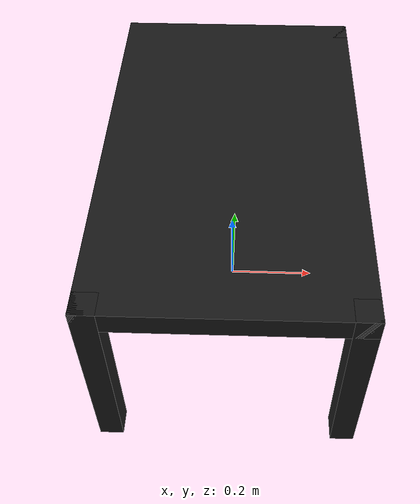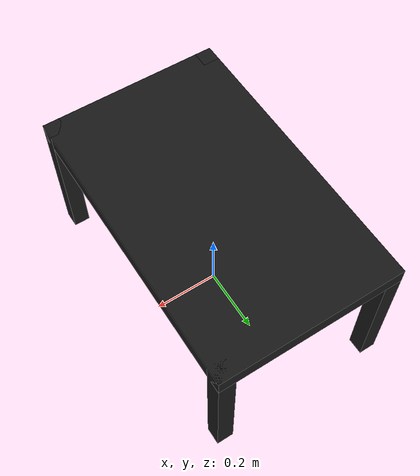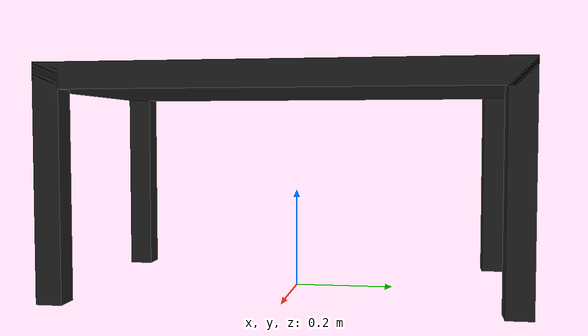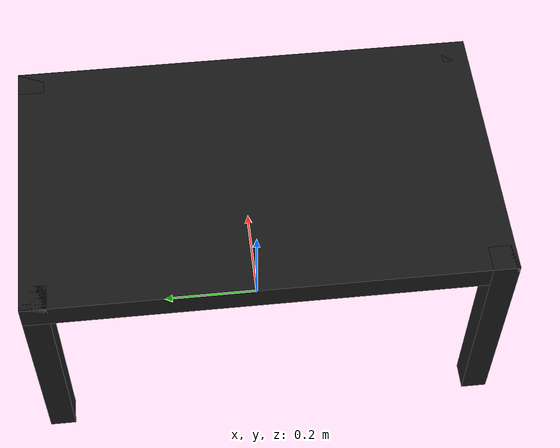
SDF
<?xml version="1.0"?>
<sdf version="1.6">
  <model name="rgo2015/couch_table">
    <link name="1_link">
      <collision name="1_col">
        <geometry>
          <box>
            <size>0.55 0.9 0.05</size>
          </box>
        </geometry>
      </collision>
      <visual name="1_vis">
        <geometry>
          <box>
            <size>0.55 0.9 0.05</size>
          </box>
        </geometry>
        <material>
          <ambient>0.1 0.1 0.1 1</ambient>
        </material>
      </visual>
      <pose>0.0 0.0 0.425 0 0 0</pose>
    </link>
    <link name="2_link">
      <collision name="2_col">
        <geometry>
          <box>
            <size>0.05 0.05 0.45</size>
          </box>
        </geometry>
      </collision>
      <visual name="2_vis">
        <geometry>
          <box>
            <size>0.05 0.05 0.45</size>
          </box>
        </geometry>
        <material>
          <ambient>0.1 0.1 0.1 1</ambient>
        </material>
      </visual>
      <pose>-0.25 -0.425 0.225 0 0 0</pose>
    </link>
    <link name="3_link">
      <collision name="3_col">
        <geometry>
          <box>
            <size>0.05 0.05 0.45</size>
          </box>
        </geometry>
      </collision>
      <visual name="3_vis">
        <geometry>
          <box>
            <size>0.05 0.05 0.45</size>
          </box>
        </geometry>
        <material>
          <ambient>0.1 0.1 0.1 1</ambient>
        </material>
      </visual>
      <pose>-0.25 0.425 0.225 0 0 0</pose>
    </link>
    <link name="4_link">
      <collision name="4_col">
        <geometry>
          <box>
            <size>0.05 0.05 0.45</size>
          </box>
        </geometry>
      </collision>
      <visual name="4_vis">
        <geometry>
          <box>
            <size>0.05 0.05 0.45</size>
          </box>
        </geometry>
        <material>
          <ambient>0.1 0.1 0.1 1</ambient>
        </material>
      </visual>
      <pose>0.25 -0.425 0.225 0 0 0</pose>
    </link>
    <link name="5_link">
      <collision name="5_col">
        <geometry>
          <box>
            <size>0.05 0.05 0.45</size>
          </box>
        </geometry>
      </collision>
      <visual name="5_vis">
        <geometry>
          <box>
            <size>0.05 0.05 0.45</size>
          </box>
        </geometry>
        <material>
          <ambient>0.1 0.1 0.1 1</ambient>
        </material>
      </visual>
      <pose>0.25 0.425 0.225 0 0 0</pose>
    </link>
    <static>true</static>
  </model>
</sdf>
